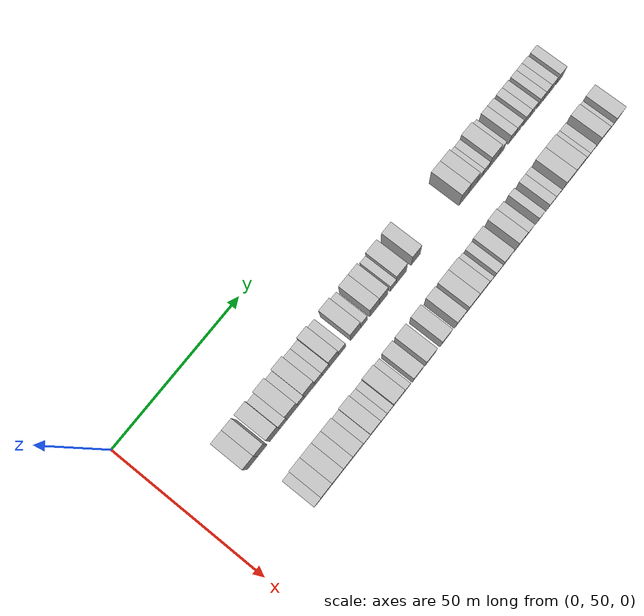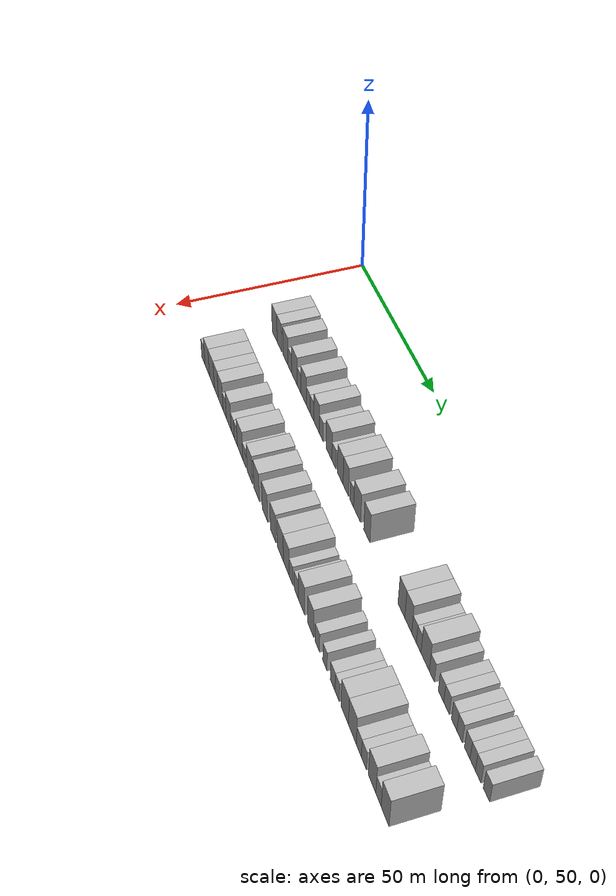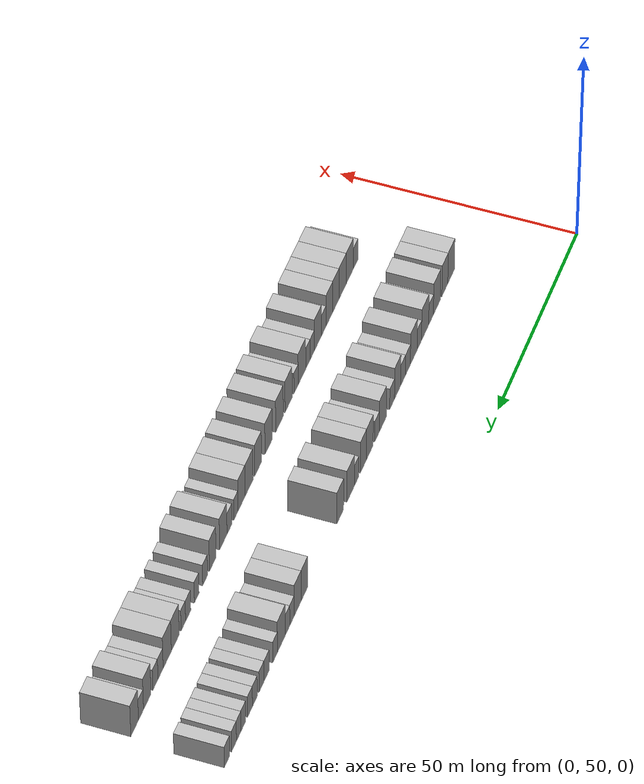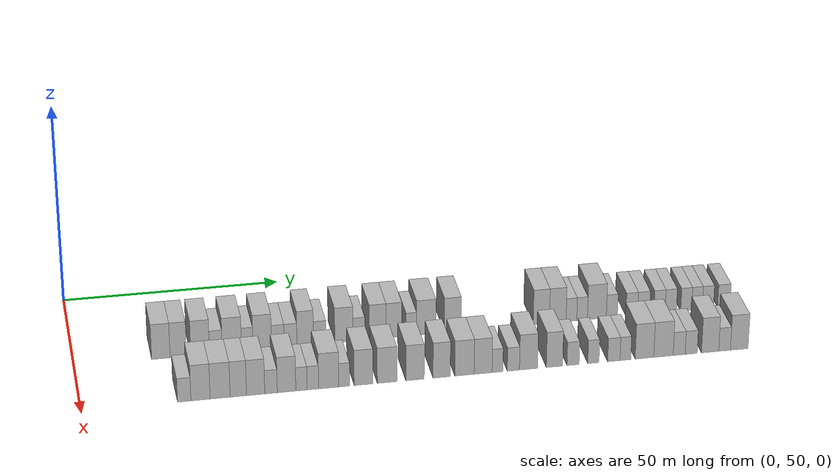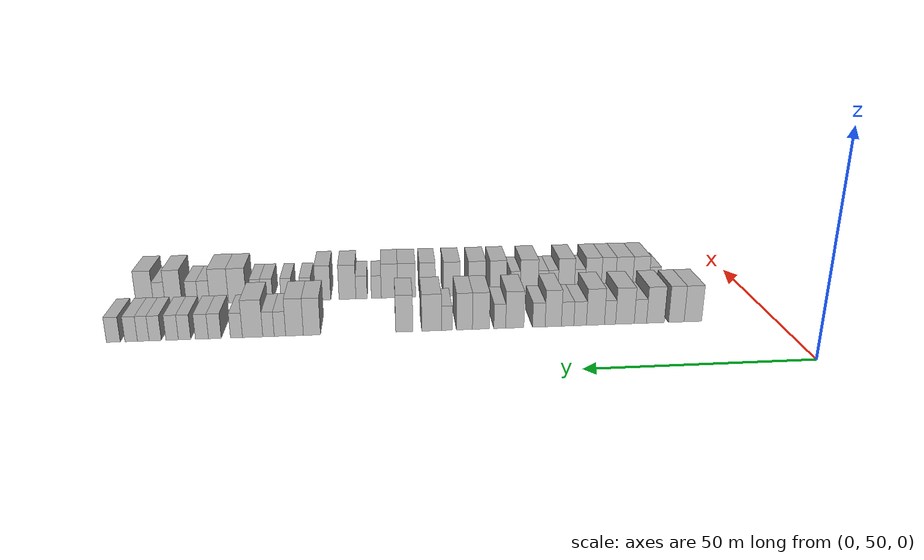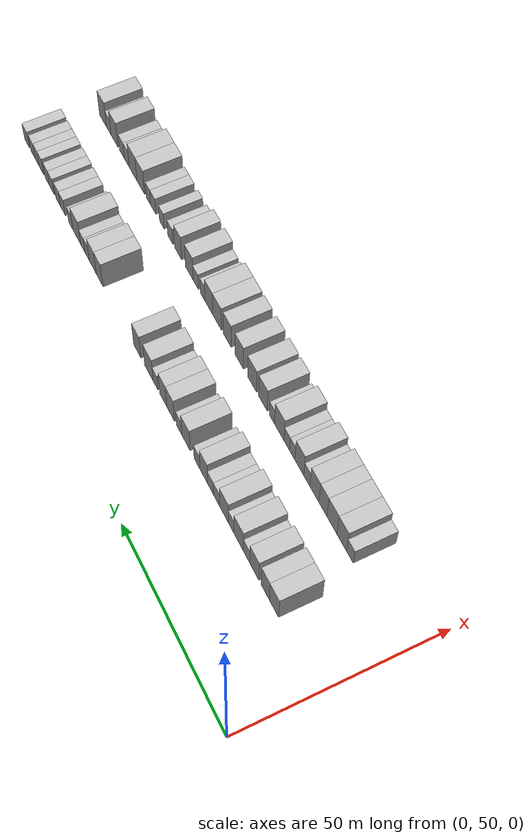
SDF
<sdf version="1.6">
 <world name="default">
  <model name="building_68">
   <static>1</static>
   <pose>25.0000 69.4503 0 0.000000 0.000000 0.000000</pose>
   <link name="link">
    <pose>0 0 4.50 0 0 0</pose>
    <collision name="collision"><geometry><box><size>10.0000 4.1691 9.0000</size></box></geometry></collision>
    <visual name="visual">
     <cast_shadows>0</cast_shadows>
     <geometry><box><size>10.0000 4.1691 9.0000</size></box></geometry>
     <material>
      <script>
       <uri>model://HANNAS_wall/materials/scripts</uri>
       <uri>model://HANNAS_wall/materials/textures</uri>
       <name>vrc/HANNAS_wall</name>
      </script>
     </material>
    </visual>
   </link>
  </model>
  <model name="building_69">
   <static>1</static>
   <pose>25.0000 73.3714 0 0.000000 0.000000 0.000000</pose>
   <link name="link">
    <pose>0 0 4.50 0 0 0</pose>
    <collision name="collision"><geometry><box><size>10.0000 3.6731 9.0000</size></box></geometry></collision>
    <visual name="visual">
     <cast_shadows>0</cast_shadows>
     <geometry><box><size>10.0000 3.6731 9.0000</size></box></geometry>
     <material>
      <script>
       <uri>model://HANNAS_wall/materials/scripts</uri>
       <uri>model://HANNAS_wall/materials/textures</uri>
       <name>vrc/HANNAS_wall</name>
      </script>
     </material>
    </visual>
   </link>
  </model>
  <model name="building_70">
   <static>1</static>
   <pose>25.0000 78.3073 0 0.000000 0.000000 0.000000</pose>
   <link name="link">
    <pose>0 0 4.50 0 0 0</pose>
    <collision name="collision"><geometry><box><size>10.0000 4.1988 9.0000</size></box></geometry></collision>
    <visual name="visual">
     <cast_shadows>0</cast_shadows>
     <geometry><box><size>10.0000 4.1988 9.0000</size></box></geometry>
     <material>
      <script>
       <uri>model://HANNAS_wall/materials/scripts</uri>
       <uri>model://HANNAS_wall/materials/textures</uri>
       <name>vrc/HANNAS_wall</name>
      </script>
     </material>
    </visual>
   </link>
  </model>
  <model name="building_71">
   <static>1</static>
   <pose>25.0000 81.8561 0 0.000000 0.000000 0.000000</pose>
   <link name="link">
    <pose>0 0 3.00 0 0 0</pose>
    <collision name="collision"><geometry><box><size>10.0000 2.8987 6.0000</size></box></geometry></collision>
    <visual name="visual">
     <cast_shadows>0</cast_shadows>
     <geometry><box><size>10.0000 2.8987 6.0000</size></box></geometry>
     <material>
      <script>
       <uri>model://HANNAS_wall/materials/scripts</uri>
       <uri>model://HANNAS_wall/materials/textures</uri>
       <name>vrc/HANNAS_wall</name>
      </script>
     </material>
    </visual>
   </link>
  </model>
  <model name="building_72">
   <static>1</static>
   <pose>25.0000 85.4938 0 0.000000 0.000000 0.000000</pose>
   <link name="link">
    <pose>0 0 4.50 0 0 0</pose>
    <collision name="collision"><geometry><box><size>10.0000 4.3767 9.0000</size></box></geometry></collision>
    <visual name="visual">
     <cast_shadows>0</cast_shadows>
     <geometry><box><size>10.0000 4.3767 9.0000</size></box></geometry>
     <material>
      <script>
       <uri>model://HANNAS_wall/materials/scripts</uri>
       <uri>model://HANNAS_wall/materials/textures</uri>
       <name>vrc/HANNAS_wall</name>
      </script>
     </material>
    </visual>
   </link>
  </model>
  <model name="building_73">
   <static>1</static>
   <pose>25.0000 88.9844 0 0.000000 0.000000 0.000000</pose>
   <link name="link">
    <pose>0 0 3.00 0 0 0</pose>
    <collision name="collision"><geometry><box><size>10.0000 2.6045 6.0000</size></box></geometry></collision>
    <visual name="visual">
     <cast_shadows>0</cast_shadows>
     <geometry><box><size>10.0000 2.6045 6.0000</size></box></geometry>
     <material>
      <script>
       <uri>model://HANNAS_wall/materials/scripts</uri>
       <uri>model://HANNAS_wall/materials/textures</uri>
       <name>vrc/HANNAS_wall</name>
      </script>
     </material>
    </visual>
   </link>
  </model>
  <model name="building_74">
   <static>1</static>
   <pose>25.0000 92.3918 0 0.000000 0.000000 0.000000</pose>
   <link name="link">
    <pose>0 0 4.50 0 0 0</pose>
    <collision name="collision"><geometry><box><size>10.0000 4.2104 9.0000</size></box></geometry></collision>
    <visual name="visual">
     <cast_shadows>0</cast_shadows>
     <geometry><box><size>10.0000 4.2104 9.0000</size></box></geometry>
     <material>
      <script>
       <uri>model://HANNAS_wall/materials/scripts</uri>
       <uri>model://HANNAS_wall/materials/textures</uri>
       <name>vrc/HANNAS_wall</name>
      </script>
     </material>
    </visual>
   </link>
  </model>
  <model name="building_75">
   <static>1</static>
   <pose>25.0000 95.9577 0 0.000000 0.000000 0.000000</pose>
   <link name="link">
    <pose>0 0 3.00 0 0 0</pose>
    <collision name="collision"><geometry><box><size>10.0000 2.9214 6.0000</size></box></geometry></collision>
    <visual name="visual">
     <cast_shadows>0</cast_shadows>
     <geometry><box><size>10.0000 2.9214 6.0000</size></box></geometry>
     <material>
      <script>
       <uri>model://HANNAS_wall/materials/scripts</uri>
       <uri>model://HANNAS_wall/materials/textures</uri>
       <name>vrc/HANNAS_wall</name>
      </script>
     </material>
    </visual>
   </link>
  </model>
  <model name="building_76">
   <static>1</static>
   <pose>25.0000 98.8591 0 0.000000 0.000000 0.000000</pose>
   <link name="link">
    <pose>0 0 3.00 0 0 0</pose>
    <collision name="collision"><geometry><box><size>10.0000 2.8815 6.0000</size></box></geometry></collision>
    <visual name="visual">
     <cast_shadows>0</cast_shadows>
     <geometry><box><size>10.0000 2.8815 6.0000</size></box></geometry>
     <material>
      <script>
       <uri>model://HANNAS_wall/materials/scripts</uri>
       <uri>model://HANNAS_wall/materials/textures</uri>
       <name>vrc/HANNAS_wall</name>
      </script>
     </material>
    </visual>
   </link>
  </model>
  <model name="building_77">
   <static>1</static>
   <pose>25.0000 102.1844 0 0.000000 0.000000 0.000000</pose>
   <link name="link">
    <pose>0 0 4.50 0 0 0</pose>
    <collision name="collision"><geometry><box><size>10.0000 3.7690 9.0000</size></box></geometry></collision>
    <visual name="visual">
     <cast_shadows>0</cast_shadows>
     <geometry><box><size>10.0000 3.7690 9.0000</size></box></geometry>
     <material>
      <script>
       <uri>model://HANNAS_wall/materials/scripts</uri>
       <uri>model://HANNAS_wall/materials/textures</uri>
       <name>vrc/HANNAS_wall</name>
      </script>
     </material>
    </visual>
   </link>
  </model>
  <model name="building_78">
   <static>1</static>
   <pose>25.0000 105.5099 0 0.000000 0.000000 0.000000</pose>
   <link name="link">
    <pose>0 0 3.00 0 0 0</pose>
    <collision name="collision"><geometry><box><size>10.0000 2.8819 6.0000</size></box></geometry></collision>
    <visual name="visual">
     <cast_shadows>0</cast_shadows>
     <geometry><box><size>10.0000 2.8819 6.0000</size></box></geometry>
     <material>
      <script>
       <uri>model://HANNAS_wall/materials/scripts</uri>
       <uri>model://HANNAS_wall/materials/textures</uri>
       <name>vrc/HANNAS_wall</name>
      </script>
     </material>
    </visual>
   </link>
  </model>
  <model name="building_79">
   <static>1</static>
   <pose>25.0000 111.0395 0 0.000000 0.000000 0.000000</pose>
   <link name="link">
    <pose>0 0 4.50 0 0 0</pose>
    <collision name="collision"><geometry><box><size>10.0000 4.1774 9.0000</size></box></geometry></collision>
    <visual name="visual">
     <cast_shadows>0</cast_shadows>
     <geometry><box><size>10.0000 4.1774 9.0000</size></box></geometry>
     <material>
      <script>
       <uri>model://HANNAS_wall/materials/scripts</uri>
       <uri>model://HANNAS_wall/materials/textures</uri>
       <name>vrc/HANNAS_wall</name>
      </script>
     </material>
    </visual>
   </link>
  </model>
  <model name="building_80">
   <static>1</static>
   <pose>25.0000 114.4800 0 0.000000 0.000000 0.000000</pose>
   <link name="link">
    <pose>0 0 3.00 0 0 0</pose>
    <collision name="collision"><geometry><box><size>10.0000 2.7036 6.0000</size></box></geometry></collision>
    <visual name="visual">
     <cast_shadows>0</cast_shadows>
     <geometry><box><size>10.0000 2.7036 6.0000</size></box></geometry>
     <material>
      <script>
       <uri>model://HANNAS_wall/materials/scripts</uri>
       <uri>model://HANNAS_wall/materials/textures</uri>
       <name>vrc/HANNAS_wall</name>
      </script>
     </material>
    </visual>
   </link>
  </model>
  <model name="building_81">
   <static>1</static>
   <pose>25.0000 118.7855 0 0.000000 0.000000 0.000000</pose>
   <link name="link">
    <pose>0 0 4.50 0 0 0</pose>
    <collision name="collision"><geometry><box><size>10.0000 3.9073 9.0000</size></box></geometry></collision>
    <visual name="visual">
     <cast_shadows>0</cast_shadows>
     <geometry><box><size>10.0000 3.9073 9.0000</size></box></geometry>
     <material>
      <script>
       <uri>model://HANNAS_wall/materials/scripts</uri>
       <uri>model://HANNAS_wall/materials/textures</uri>
       <name>vrc/HANNAS_wall</name>
      </script>
     </material>
    </visual>
   </link>
  </model>
  <model name="building_82">
   <static>1</static>
   <pose>25.0000 122.5504 0 0.000000 0.000000 0.000000</pose>
   <link name="link">
    <pose>0 0 4.50 0 0 0</pose>
    <collision name="collision"><geometry><box><size>10.0000 3.6225 9.0000</size></box></geometry></collision>
    <visual name="visual">
     <cast_shadows>0</cast_shadows>
     <geometry><box><size>10.0000 3.6225 9.0000</size></box></geometry>
     <material>
      <script>
       <uri>model://HANNAS_wall/materials/scripts</uri>
       <uri>model://HANNAS_wall/materials/textures</uri>
       <name>vrc/HANNAS_wall</name>
      </script>
     </material>
    </visual>
   </link>
  </model>
  <model name="building_83">
   <static>1</static>
   <pose>25.0000 126.5689 0 0.000000 0.000000 0.000000</pose>
   <link name="link">
    <pose>0 0 3.00 0 0 0</pose>
    <collision name="collision"><geometry><box><size>10.0000 2.4144 6.0000</size></box></geometry></collision>
    <visual name="visual">
     <cast_shadows>0</cast_shadows>
     <geometry><box><size>10.0000 2.4144 6.0000</size></box></geometry>
     <material>
      <script>
       <uri>model://HANNAS_wall/materials/scripts</uri>
       <uri>model://HANNAS_wall/materials/textures</uri>
       <name>vrc/HANNAS_wall</name>
      </script>
     </material>
    </visual>
   </link>
  </model>
  <model name="building_84">
   <static>1</static>
   <pose>25.0000 130.0015 0 0.000000 0.000000 0.000000</pose>
   <link name="link">
    <pose>0 0 4.50 0 0 0</pose>
    <collision name="collision"><geometry><box><size>10.0000 4.4509 9.0000</size></box></geometry></collision>
    <visual name="visual">
     <cast_shadows>0</cast_shadows>
     <geometry><box><size>10.0000 4.4509 9.0000</size></box></geometry>
     <material>
      <script>
       <uri>model://HANNAS_wall/materials/scripts</uri>
       <uri>model://HANNAS_wall/materials/textures</uri>
       <name>vrc/HANNAS_wall</name>
      </script>
     </material>
    </visual>
   </link>
  </model>
  <model name="building_85">
   <static>1</static>
   <pose>25.0000 136.1635 0 0.000000 0.000000 0.000000</pose>
   <link name="link">
    <pose>0 0 4.50 0 0 0</pose>
    <collision name="collision"><geometry><box><size>10.0000 3.8731 9.0000</size></box></geometry></collision>
    <visual name="visual">
     <cast_shadows>0</cast_shadows>
     <geometry><box><size>10.0000 3.8731 9.0000</size></box></geometry>
     <material>
      <script>
       <uri>model://HANNAS_wall/materials/scripts</uri>
       <uri>model://HANNAS_wall/materials/textures</uri>
       <name>vrc/HANNAS_wall</name>
      </script>
     </material>
    </visual>
   </link>
  </model>
  <model name="building_86">
   <static>1</static>
   <pose>25.0000 156.7935 0 0.000000 0.000000 0.000000</pose>
   <link name="link">
    <pose>0 0 4.50 0 0 0</pose>
    <collision name="collision"><geometry><box><size>10.0000 3.7956 9.0000</size></box></geometry></collision>
    <visual name="visual">
     <cast_shadows>0</cast_shadows>
     <geometry><box><size>10.0000 3.7956 9.0000</size></box></geometry>
     <material>
      <script>
       <uri>model://HANNAS_wall/materials/scripts</uri>
       <uri>model://HANNAS_wall/materials/textures</uri>
       <name>vrc/HANNAS_wall</name>
      </script>
     </material>
    </visual>
   </link>
  </model>
  <model name="building_87">
   <static>1</static>
   <pose>25.0000 160.6420 0 0.000000 0.000000 0.000000</pose>
   <link name="link">
    <pose>0 0 4.50 0 0 0</pose>
    <collision name="collision"><geometry><box><size>10.0000 3.9015 9.0000</size></box></geometry></collision>
    <visual name="visual">
     <cast_shadows>0</cast_shadows>
     <geometry><box><size>10.0000 3.9015 9.0000</size></box></geometry>
     <material>
      <script>
       <uri>model://HANNAS_wall/materials/scripts</uri>
       <uri>model://HANNAS_wall/materials/textures</uri>
       <name>vrc/HANNAS_wall</name>
      </script>
     </material>
    </visual>
   </link>
  </model>
  <model name="building_88">
   <static>1</static>
   <pose>25.0000 163.8565 0 0.000000 0.000000 0.000000</pose>
   <link name="link">
    <pose>0 0 3.00 0 0 0</pose>
    <collision name="collision"><geometry><box><size>10.0000 2.5274 6.0000</size></box></geometry></collision>
    <visual name="visual">
     <cast_shadows>0</cast_shadows>
     <geometry><box><size>10.0000 2.5274 6.0000</size></box></geometry>
     <material>
      <script>
       <uri>model://HANNAS_wall/materials/scripts</uri>
       <uri>model://HANNAS_wall/materials/textures</uri>
       <name>vrc/HANNAS_wall</name>
      </script>
     </material>
    </visual>
   </link>
  </model>
  <model name="building_89">
   <static>1</static>
   <pose>25.0000 166.3683 0 0.000000 0.000000 0.000000</pose>
   <link name="link">
    <pose>0 0 3.00 0 0 0</pose>
    <collision name="collision"><geometry><box><size>10.0000 2.4962 6.0000</size></box></geometry></collision>
    <visual name="visual">
     <cast_shadows>0</cast_shadows>
     <geometry><box><size>10.0000 2.4962 6.0000</size></box></geometry>
     <material>
      <script>
       <uri>model://HANNAS_wall/materials/scripts</uri>
       <uri>model://HANNAS_wall/materials/textures</uri>
       <name>vrc/HANNAS_wall</name>
      </script>
     </material>
    </visual>
   </link>
  </model>
  <model name="building_90">
   <static>1</static>
   <pose>25.0000 169.8488 0 0.000000 0.000000 0.000000</pose>
   <link name="link">
    <pose>0 0 4.50 0 0 0</pose>
    <collision name="collision"><geometry><box><size>10.0000 4.4647 9.0000</size></box></geometry></collision>
    <visual name="visual">
     <cast_shadows>0</cast_shadows>
     <geometry><box><size>10.0000 4.4647 9.0000</size></box></geometry>
     <material>
      <script>
       <uri>model://HANNAS_wall/materials/scripts</uri>
       <uri>model://HANNAS_wall/materials/textures</uri>
       <name>vrc/HANNAS_wall</name>
      </script>
     </material>
    </visual>
   </link>
  </model>
  <model name="building_91">
   <static>1</static>
   <pose>25.0000 173.3883 0 0.000000 0.000000 0.000000</pose>
   <link name="link">
    <pose>0 0 3.00 0 0 0</pose>
    <collision name="collision"><geometry><box><size>10.0000 2.6144 6.0000</size></box></geometry></collision>
    <visual name="visual">
     <cast_shadows>0</cast_shadows>
     <geometry><box><size>10.0000 2.6144 6.0000</size></box></geometry>
     <material>
      <script>
       <uri>model://HANNAS_wall/materials/scripts</uri>
       <uri>model://HANNAS_wall/materials/textures</uri>
       <name>vrc/HANNAS_wall</name>
      </script>
     </material>
    </visual>
   </link>
  </model>
  <model name="building_92">
   <static>1</static>
   <pose>25.0000 178.0933 0 0.000000 0.000000 0.000000</pose>
   <link name="link">
    <pose>0 0 3.00 0 0 0</pose>
    <collision name="collision"><geometry><box><size>10.0000 2.7958 6.0000</size></box></geometry></collision>
    <visual name="visual">
     <cast_shadows>0</cast_shadows>
     <geometry><box><size>10.0000 2.7958 6.0000</size></box></geometry>
     <material>
      <script>
       <uri>model://HANNAS_wall/materials/scripts</uri>
       <uri>model://HANNAS_wall/materials/textures</uri>
       <name>vrc/HANNAS_wall</name>
      </script>
     </material>
    </visual>
   </link>
  </model>
  <model name="building_93">
   <static>1</static>
   <pose>25.0000 180.9067 0 0.000000 0.000000 0.000000</pose>
   <link name="link">
    <pose>0 0 3.00 0 0 0</pose>
    <collision name="collision"><geometry><box><size>10.0000 2.8310 6.0000</size></box></geometry></collision>
    <visual name="visual">
     <cast_shadows>0</cast_shadows>
     <geometry><box><size>10.0000 2.8310 6.0000</size></box></geometry>
     <material>
      <script>
       <uri>model://HANNAS_wall/materials/scripts</uri>
       <uri>model://HANNAS_wall/materials/textures</uri>
       <name>vrc/HANNAS_wall</name>
      </script>
     </material>
    </visual>
   </link>
  </model>
  <model name="building_94">
   <static>1</static>
   <pose>25.0000 184.6644 0 0.000000 0.000000 0.000000</pose>
   <link name="link">
    <pose>0 0 3.00 0 0 0</pose>
    <collision name="collision"><geometry><box><size>10.0000 2.6842 6.0000</size></box></geometry></collision>
    <visual name="visual">
     <cast_shadows>0</cast_shadows>
     <geometry><box><size>10.0000 2.6842 6.0000</size></box></geometry>
     <material>
      <script>
       <uri>model://HANNAS_wall/materials/scripts</uri>
       <uri>model://HANNAS_wall/materials/textures</uri>
       <name>vrc/HANNAS_wall</name>
      </script>
     </material>
    </visual>
   </link>
  </model>
  <model name="building_95">
   <static>1</static>
   <pose>25.0000 187.3493 0 0.000000 0.000000 0.000000</pose>
   <link name="link">
    <pose>0 0 3.00 0 0 0</pose>
    <collision name="collision"><geometry><box><size>10.0000 2.6855 6.0000</size></box></geometry></collision>
    <visual name="visual">
     <cast_shadows>0</cast_shadows>
     <geometry><box><size>10.0000 2.6855 6.0000</size></box></geometry>
     <material>
      <script>
       <uri>model://HANNAS_wall/materials/scripts</uri>
       <uri>model://HANNAS_wall/materials/textures</uri>
       <name>vrc/HANNAS_wall</name>
      </script>
     </material>
    </visual>
   </link>
  </model>
  <model name="building_96">
   <static>1</static>
   <pose>25.0000 191.0009 0 0.000000 0.000000 0.000000</pose>
   <link name="link">
    <pose>0 0 3.00 0 0 0</pose>
    <collision name="collision"><geometry><box><size>10.0000 2.6177 6.0000</size></box></geometry></collision>
    <visual name="visual">
     <cast_shadows>0</cast_shadows>
     <geometry><box><size>10.0000 2.6177 6.0000</size></box></geometry>
     <material>
      <script>
       <uri>model://HANNAS_wall/materials/scripts</uri>
       <uri>model://HANNAS_wall/materials/textures</uri>
       <name>vrc/HANNAS_wall</name>
      </script>
     </material>
    </visual>
   </link>
  </model>
  <model name="building_97">
   <static>1</static>
   <pose>25.0000 193.5655 0 0.000000 0.000000 0.000000</pose>
   <link name="link">
    <pose>0 0 3.00 0 0 0</pose>
    <collision name="collision"><geometry><box><size>10.0000 2.5115 6.0000</size></box></geometry></collision>
    <visual name="visual">
     <cast_shadows>0</cast_shadows>
     <geometry><box><size>10.0000 2.5115 6.0000</size></box></geometry>
     <material>
      <script>
       <uri>model://HANNAS_wall/materials/scripts</uri>
       <uri>model://HANNAS_wall/materials/textures</uri>
       <name>vrc/HANNAS_wall</name>
      </script>
     </material>
    </visual>
   </link>
  </model>
  <model name="building_98">
   <static>1</static>
   <pose>25.0000 196.1638 0 0.000000 0.000000 0.000000</pose>
   <link name="link">
    <pose>0 0 3.00 0 0 0</pose>
    <collision name="collision"><geometry><box><size>10.0000 2.6851 6.0000</size></box></geometry></collision>
    <visual name="visual">
     <cast_shadows>0</cast_shadows>
     <geometry><box><size>10.0000 2.6851 6.0000</size></box></geometry>
     <material>
      <script>
       <uri>model://HANNAS_wall/materials/scripts</uri>
       <uri>model://HANNAS_wall/materials/textures</uri>
       <name>vrc/HANNAS_wall</name>
      </script>
     </material>
    </visual>
   </link>
  </model>
  <model name="building_99">
   <static>1</static>
   <pose>25.0000 199.9843 0 0.000000 0.000000 0.000000</pose>
   <link name="link">
    <pose>0 0 3.00 0 0 0</pose>
    <collision name="collision"><geometry><box><size>10.0000 2.9560 6.0000</size></box></geometry></collision>
    <visual name="visual">
     <cast_shadows>0</cast_shadows>
     <geometry><box><size>10.0000 2.9560 6.0000</size></box></geometry>
     <material>
      <script>
       <uri>model://HANNAS_wall/materials/scripts</uri>
       <uri>model://HANNAS_wall/materials/textures</uri>
       <name>vrc/HANNAS_wall</name>
      </script>
     </material>
    </visual>
   </link>
  </model>
  <model name="building_159">
   <static>1</static>
   <pose>44.0000 72.5398 0 0.000000 0.000000 0.000000</pose>
   <link name="link">
    <pose>0 0 3.00 0 0 0</pose>
    <collision name="collision"><geometry><box><size>10.0000 2.9612 6.0000</size></box></geometry></collision>
    <visual name="visual">
     <cast_shadows>0</cast_shadows>
     <geometry><box><size>10.0000 2.9612 6.0000</size></box></geometry>
     <material>
      <script>
       <uri>model://HANNAS_wall/materials/scripts</uri>
       <uri>model://HANNAS_wall/materials/textures</uri>
       <name>vrc/HANNAS_wall</name>
      </script>
     </material>
    </visual>
   </link>
  </model>
  <model name="building_160">
   <static>1</static>
   <pose>44.0000 76.1293 0 0.000000 0.000000 0.000000</pose>
   <link name="link">
    <pose>0 0 4.50 0 0 0</pose>
    <collision name="collision"><geometry><box><size>10.0000 4.2179 9.0000</size></box></geometry></collision>
    <visual name="visual">
     <cast_shadows>0</cast_shadows>
     <geometry><box><size>10.0000 4.2179 9.0000</size></box></geometry>
     <material>
      <script>
       <uri>model://HANNAS_wall/materials/scripts</uri>
       <uri>model://HANNAS_wall/materials/textures</uri>
       <name>vrc/HANNAS_wall</name>
      </script>
     </material>
    </visual>
   </link>
  </model>
  <model name="building_161">
   <static>1</static>
   <pose>44.0000 80.4388 0 0.000000 0.000000 0.000000</pose>
   <link name="link">
    <pose>0 0 4.50 0 0 0</pose>
    <collision name="collision"><geometry><box><size>10.0000 4.4010 9.0000</size></box></geometry></collision>
    <visual name="visual">
     <cast_shadows>0</cast_shadows>
     <geometry><box><size>10.0000 4.4010 9.0000</size></box></geometry>
     <material>
      <script>
       <uri>model://HANNAS_wall/materials/scripts</uri>
       <uri>model://HANNAS_wall/materials/textures</uri>
       <name>vrc/HANNAS_wall</name>
      </script>
     </material>
    </visual>
   </link>
  </model>
  <model name="building_162">
   <static>1</static>
   <pose>44.0000 84.4505 0 0.000000 0.000000 0.000000</pose>
   <link name="link">
    <pose>0 0 4.50 0 0 0</pose>
    <collision name="collision"><geometry><box><size>10.0000 3.6226 9.0000</size></box></geometry></collision>
    <visual name="visual">
     <cast_shadows>0</cast_shadows>
     <geometry><box><size>10.0000 3.6226 9.0000</size></box></geometry>
     <material>
      <script>
       <uri>model://HANNAS_wall/materials/scripts</uri>
       <uri>model://HANNAS_wall/materials/textures</uri>
       <name>vrc/HANNAS_wall</name>
      </script>
     </material>
    </visual>
   </link>
  </model>
  <model name="building_163">
   <static>1</static>
   <pose>44.0000 88.2888 0 0.000000 0.000000 0.000000</pose>
   <link name="link">
    <pose>0 0 4.50 0 0 0</pose>
    <collision name="collision"><geometry><box><size>10.0000 4.0539 9.0000</size></box></geometry></collision>
    <visual name="visual">
     <cast_shadows>0</cast_shadows>
     <geometry><box><size>10.0000 4.0539 9.0000</size></box></geometry>
     <material>
      <script>
       <uri>model://HANNAS_wall/materials/scripts</uri>
       <uri>model://HANNAS_wall/materials/textures</uri>
       <name>vrc/HANNAS_wall</name>
      </script>
     </material>
    </visual>
   </link>
  </model>
  <model name="building_164">
   <static>1</static>
   <pose>44.0000 91.7066 0 0.000000 0.000000 0.000000</pose>
   <link name="link">
    <pose>0 0 3.00 0 0 0</pose>
    <collision name="collision"><geometry><box><size>10.0000 2.7818 6.0000</size></box></geometry></collision>
    <visual name="visual">
     <cast_shadows>0</cast_shadows>
     <geometry><box><size>10.0000 2.7818 6.0000</size></box></geometry>
     <material>
      <script>
       <uri>model://HANNAS_wall/materials/scripts</uri>
       <uri>model://HANNAS_wall/materials/textures</uri>
       <name>vrc/HANNAS_wall</name>
      </script>
     </material>
    </visual>
   </link>
  </model>
  <model name="building_165">
   <static>1</static>
   <pose>44.0000 95.1552 0 0.000000 0.000000 0.000000</pose>
   <link name="link">
    <pose>0 0 4.50 0 0 0</pose>
    <collision name="collision"><geometry><box><size>10.0000 4.1153 9.0000</size></box></geometry></collision>
    <visual name="visual">
     <cast_shadows>0</cast_shadows>
     <geometry><box><size>10.0000 4.1153 9.0000</size></box></geometry>
     <material>
      <script>
       <uri>model://HANNAS_wall/materials/scripts</uri>
       <uri>model://HANNAS_wall/materials/textures</uri>
       <name>vrc/HANNAS_wall</name>
      </script>
     </material>
    </visual>
   </link>
  </model>
  <model name="building_166">
   <static>1</static>
   <pose>44.0000 98.4694 0 0.000000 0.000000 0.000000</pose>
   <link name="link">
    <pose>0 0 3.00 0 0 0</pose>
    <collision name="collision"><geometry><box><size>10.0000 2.5132 6.0000</size></box></geometry></collision>
    <visual name="visual">
     <cast_shadows>0</cast_shadows>
     <geometry><box><size>10.0000 2.5132 6.0000</size></box></geometry>
     <material>
      <script>
       <uri>model://HANNAS_wall/materials/scripts</uri>
       <uri>model://HANNAS_wall/materials/textures</uri>
       <name>vrc/HANNAS_wall</name>
      </script>
     </material>
    </visual>
   </link>
  </model>
  <model name="building_167">
   <static>1</static>
   <pose>44.0000 101.0112 0 0.000000 0.000000 0.000000</pose>
   <link name="link">
    <pose>0 0 3.00 0 0 0</pose>
    <collision name="collision"><geometry><box><size>10.0000 2.5705 6.0000</size></box></geometry></collision>
    <visual name="visual">
     <cast_shadows>0</cast_shadows>
     <geometry><box><size>10.0000 2.5705 6.0000</size></box></geometry>
     <material>
      <script>
       <uri>model://HANNAS_wall/materials/scripts</uri>
       <uri>model://HANNAS_wall/materials/textures</uri>
       <name>vrc/HANNAS_wall</name>
      </script>
     </material>
    </visual>
   </link>
  </model>
  <model name="building_168">
   <static>1</static>
   <pose>44.0000 104.5457 0 0.000000 0.000000 0.000000</pose>
   <link name="link">
    <pose>0 0 4.50 0 0 0</pose>
    <collision name="collision"><geometry><box><size>10.0000 4.4985 9.0000</size></box></geometry></collision>
    <visual name="visual">
     <cast_shadows>0</cast_shadows>
     <geometry><box><size>10.0000 4.4985 9.0000</size></box></geometry>
     <material>
      <script>
       <uri>model://HANNAS_wall/materials/scripts</uri>
       <uri>model://HANNAS_wall/materials/textures</uri>
       <name>vrc/HANNAS_wall</name>
      </script>
     </material>
    </visual>
   </link>
  </model>
  <model name="building_169">
   <static>1</static>
   <pose>44.0000 108.0178 0 0.000000 0.000000 0.000000</pose>
   <link name="link">
    <pose>0 0 3.00 0 0 0</pose>
    <collision name="collision"><geometry><box><size>10.0000 2.4456 6.0000</size></box></geometry></collision>
    <visual name="visual">
     <cast_shadows>0</cast_shadows>
     <geometry><box><size>10.0000 2.4456 6.0000</size></box></geometry>
     <material>
      <script>
       <uri>model://HANNAS_wall/materials/scripts</uri>
       <uri>model://HANNAS_wall/materials/textures</uri>
       <name>vrc/HANNAS_wall</name>
      </script>
     </material>
    </visual>
   </link>
  </model>
  <model name="building_170">
   <static>1</static>
   <pose>44.0000 112.3366 0 0.000000 0.000000 0.000000</pose>
   <link name="link">
    <pose>0 0 4.50 0 0 0</pose>
    <collision name="collision"><geometry><box><size>10.0000 4.1920 9.0000</size></box></geometry></collision>
    <visual name="visual">
     <cast_shadows>0</cast_shadows>
     <geometry><box><size>10.0000 4.1920 9.0000</size></box></geometry>
     <material>
      <script>
       <uri>model://HANNAS_wall/materials/scripts</uri>
       <uri>model://HANNAS_wall/materials/textures</uri>
       <name>vrc/HANNAS_wall</name>
      </script>
     </material>
    </visual>
   </link>
  </model>
  <model name="building_171">
   <static>1</static>
   <pose>44.0000 117.6333 0 0.000000 0.000000 0.000000</pose>
   <link name="link">
    <pose>0 0 4.50 0 0 0</pose>
    <collision name="collision"><geometry><box><size>10.0000 4.4015 9.0000</size></box></geometry></collision>
    <visual name="visual">
     <cast_shadows>0</cast_shadows>
     <geometry><box><size>10.0000 4.4015 9.0000</size></box></geometry>
     <material>
      <script>
       <uri>model://HANNAS_wall/materials/scripts</uri>
       <uri>model://HANNAS_wall/materials/textures</uri>
       <name>vrc/HANNAS_wall</name>
      </script>
     </material>
    </visual>
   </link>
  </model>
  <model name="building_172">
   <static>1</static>
   <pose>44.0000 123.9047 0 0.000000 0.000000 0.000000</pose>
   <link name="link">
    <pose>0 0 4.50 0 0 0</pose>
    <collision name="collision"><geometry><box><size>10.0000 4.1411 9.0000</size></box></geometry></collision>
    <visual name="visual">
     <cast_shadows>0</cast_shadows>
     <geometry><box><size>10.0000 4.1411 9.0000</size></box></geometry>
     <material>
      <script>
       <uri>model://HANNAS_wall/materials/scripts</uri>
       <uri>model://HANNAS_wall/materials/textures</uri>
       <name>vrc/HANNAS_wall</name>
      </script>
     </material>
    </visual>
   </link>
  </model>
  <model name="building_173">
   <static>1</static>
   <pose>44.0000 129.9320 0 0.000000 0.000000 0.000000</pose>
   <link name="link">
    <pose>0 0 4.50 0 0 0</pose>
    <collision name="collision"><geometry><box><size>10.0000 3.9136 9.0000</size></box></geometry></collision>
    <visual name="visual">
     <cast_shadows>0</cast_shadows>
     <geometry><box><size>10.0000 3.9136 9.0000</size></box></geometry>
     <material>
      <script>
       <uri>model://HANNAS_wall/materials/scripts</uri>
       <uri>model://HANNAS_wall/materials/textures</uri>
       <name>vrc/HANNAS_wall</name>
      </script>
     </material>
    </visual>
   </link>
  </model>
  <model name="building_174">
   <static>1</static>
   <pose>44.0000 135.0901 0 0.000000 0.000000 0.000000</pose>
   <link name="link">
    <pose>0 0 4.50 0 0 0</pose>
    <collision name="collision"><geometry><box><size>10.0000 4.4026 9.0000</size></box></geometry></collision>
    <visual name="visual">
     <cast_shadows>0</cast_shadows>
     <geometry><box><size>10.0000 4.4026 9.0000</size></box></geometry>
     <material>
      <script>
       <uri>model://HANNAS_wall/materials/scripts</uri>
       <uri>model://HANNAS_wall/materials/textures</uri>
       <name>vrc/HANNAS_wall</name>
      </script>
     </material>
    </visual>
   </link>
  </model>
  <model name="building_175">
   <static>1</static>
   <pose>44.0000 139.3220 0 0.000000 0.000000 0.000000</pose>
   <link name="link">
    <pose>0 0 4.50 0 0 0</pose>
    <collision name="collision"><geometry><box><size>10.0000 4.0610 9.0000</size></box></geometry></collision>
    <visual name="visual">
     <cast_shadows>0</cast_shadows>
     <geometry><box><size>10.0000 4.0610 9.0000</size></box></geometry>
     <material>
      <script>
       <uri>model://HANNAS_wall/materials/scripts</uri>
       <uri>model://HANNAS_wall/materials/textures</uri>
       <name>vrc/HANNAS_wall</name>
      </script>
     </material>
    </visual>
   </link>
  </model>
  <model name="building_176">
   <static>1</static>
   <pose>44.0000 142.5770 0 0.000000 0.000000 0.000000</pose>
   <link name="link">
    <pose>0 0 3.00 0 0 0</pose>
    <collision name="collision"><geometry><box><size>10.0000 2.4490 6.0000</size></box></geometry></collision>
    <visual name="visual">
     <cast_shadows>0</cast_shadows>
     <geometry><box><size>10.0000 2.4490 6.0000</size></box></geometry>
     <material>
      <script>
       <uri>model://HANNAS_wall/materials/scripts</uri>
       <uri>model://HANNAS_wall/materials/textures</uri>
       <name>vrc/HANNAS_wall</name>
      </script>
     </material>
    </visual>
   </link>
  </model>
  <model name="building_177">
   <static>1</static>
   <pose>44.0000 146.1902 0 0.000000 0.000000 0.000000</pose>
   <link name="link">
    <pose>0 0 3.00 0 0 0</pose>
    <collision name="collision"><geometry><box><size>10.0000 2.7776 6.0000</size></box></geometry></collision>
    <visual name="visual">
     <cast_shadows>0</cast_shadows>
     <geometry><box><size>10.0000 2.7776 6.0000</size></box></geometry>
     <material>
      <script>
       <uri>model://HANNAS_wall/materials/scripts</uri>
       <uri>model://HANNAS_wall/materials/textures</uri>
       <name>vrc/HANNAS_wall</name>
      </script>
     </material>
    </visual>
   </link>
  </model>
  <model name="building_178">
   <static>1</static>
   <pose>44.0000 149.6472 0 0.000000 0.000000 0.000000</pose>
   <link name="link">
    <pose>0 0 4.50 0 0 0</pose>
    <collision name="collision"><geometry><box><size>10.0000 4.1362 9.0000</size></box></geometry></collision>
    <visual name="visual">
     <cast_shadows>0</cast_shadows>
     <geometry><box><size>10.0000 4.1362 9.0000</size></box></geometry>
     <material>
      <script>
       <uri>model://HANNAS_wall/materials/scripts</uri>
       <uri>model://HANNAS_wall/materials/textures</uri>
       <name>vrc/HANNAS_wall</name>
      </script>
     </material>
    </visual>
   </link>
  </model>
  <model name="building_179">
   <static>1</static>
   <pose>44.0000 155.5721 0 0.000000 0.000000 0.000000</pose>
   <link name="link">
    <pose>0 0 4.50 0 0 0</pose>
    <collision name="collision"><geometry><box><size>10.0000 3.7136 9.0000</size></box></geometry></collision>
    <visual name="visual">
     <cast_shadows>0</cast_shadows>
     <geometry><box><size>10.0000 3.7136 9.0000</size></box></geometry>
     <material>
      <script>
       <uri>model://HANNAS_wall/materials/scripts</uri>
       <uri>model://HANNAS_wall/materials/textures</uri>
       <name>vrc/HANNAS_wall</name>
      </script>
     </material>
    </visual>
   </link>
  </model>
  <model name="building_180">
   <static>1</static>
   <pose>44.0000 159.8139 0 0.000000 0.000000 0.000000</pose>
   <link name="link">
    <pose>0 0 3.00 0 0 0</pose>
    <collision name="collision"><geometry><box><size>10.0000 2.7700 6.0000</size></box></geometry></collision>
    <visual name="visual">
     <cast_shadows>0</cast_shadows>
     <geometry><box><size>10.0000 2.7700 6.0000</size></box></geometry>
     <material>
      <script>
       <uri>model://HANNAS_wall/materials/scripts</uri>
       <uri>model://HANNAS_wall/materials/textures</uri>
       <name>vrc/HANNAS_wall</name>
      </script>
     </material>
    </visual>
   </link>
  </model>
  <model name="building_181">
   <static>1</static>
   <pose>44.0000 164.4835 0 0.000000 0.000000 0.000000</pose>
   <link name="link">
    <pose>0 0 3.00 0 0 0</pose>
    <collision name="collision"><geometry><box><size>10.0000 2.5692 6.0000</size></box></geometry></collision>
    <visual name="visual">
     <cast_shadows>0</cast_shadows>
     <geometry><box><size>10.0000 2.5692 6.0000</size></box></geometry>
     <material>
      <script>
       <uri>model://HANNAS_wall/materials/scripts</uri>
       <uri>model://HANNAS_wall/materials/textures</uri>
       <name>vrc/HANNAS_wall</name>
      </script>
     </material>
    </visual>
   </link>
  </model>
  <model name="building_182">
   <static>1</static>
   <pose>44.0000 169.1935 0 0.000000 0.000000 0.000000</pose>
   <link name="link">
    <pose>0 0 3.00 0 0 0</pose>
    <collision name="collision"><geometry><box><size>10.0000 2.8508 6.0000</size></box></geometry></collision>
    <visual name="visual">
     <cast_shadows>0</cast_shadows>
     <geometry><box><size>10.0000 2.8508 6.0000</size></box></geometry>
     <material>
      <script>
       <uri>model://HANNAS_wall/materials/scripts</uri>
       <uri>model://HANNAS_wall/materials/textures</uri>
       <name>vrc/HANNAS_wall</name>
      </script>
     </material>
    </visual>
   </link>
  </model>
  <model name="building_183">
   <static>1</static>
   <pose>44.0000 171.8609 0 0.000000 0.000000 0.000000</pose>
   <link name="link">
    <pose>0 0 3.00 0 0 0</pose>
    <collision name="collision"><geometry><box><size>10.0000 2.4839 6.0000</size></box></geometry></collision>
    <visual name="visual">
     <cast_shadows>0</cast_shadows>
     <geometry><box><size>10.0000 2.4839 6.0000</size></box></geometry>
     <material>
      <script>
       <uri>model://HANNAS_wall/materials/scripts</uri>
       <uri>model://HANNAS_wall/materials/textures</uri>
       <name>vrc/HANNAS_wall</name>
      </script>
     </material>
    </visual>
   </link>
  </model>
  <model name="building_184">
   <static>1</static>
   <pose>44.0000 176.2552 0 0.000000 0.000000 0.000000</pose>
   <link name="link">
    <pose>0 0 4.50 0 0 0</pose>
    <collision name="collision"><geometry><box><size>10.0000 4.3048 9.0000</size></box></geometry></collision>
    <visual name="visual">
     <cast_shadows>0</cast_shadows>
     <geometry><box><size>10.0000 4.3048 9.0000</size></box></geometry>
     <material>
      <script>
       <uri>model://HANNAS_wall/materials/scripts</uri>
       <uri>model://HANNAS_wall/materials/textures</uri>
       <name>vrc/HANNAS_wall</name>
      </script>
     </material>
    </visual>
   </link>
  </model>
  <model name="building_185">
   <static>1</static>
   <pose>44.0000 180.6448 0 0.000000 0.000000 0.000000</pose>
   <link name="link">
    <pose>0 0 4.50 0 0 0</pose>
    <collision name="collision"><geometry><box><size>10.0000 4.4743 9.0000</size></box></geometry></collision>
    <visual name="visual">
     <cast_shadows>0</cast_shadows>
     <geometry><box><size>10.0000 4.4743 9.0000</size></box></geometry>
     <material>
      <script>
       <uri>model://HANNAS_wall/materials/scripts</uri>
       <uri>model://HANNAS_wall/materials/textures</uri>
       <name>vrc/HANNAS_wall</name>
      </script>
     </material>
    </visual>
   </link>
  </model>
  <model name="building_186">
   <static>1</static>
   <pose>44.0000 184.2757 0 0.000000 0.000000 0.000000</pose>
   <link name="link">
    <pose>0 0 3.00 0 0 0</pose>
    <collision name="collision"><geometry><box><size>10.0000 2.7875 6.0000</size></box></geometry></collision>
    <visual name="visual">
     <cast_shadows>0</cast_shadows>
     <geometry><box><size>10.0000 2.7875 6.0000</size></box></geometry>
     <material>
      <script>
       <uri>model://HANNAS_wall/materials/scripts</uri>
       <uri>model://HANNAS_wall/materials/textures</uri>
       <name>vrc/HANNAS_wall</name>
      </script>
     </material>
    </visual>
   </link>
  </model>
  <model name="building_187">
   <static>1</static>
   <pose>44.0000 187.0632 0 0.000000 0.000000 0.000000</pose>
   <link name="link">
    <pose>0 0 3.00 0 0 0</pose>
    <collision name="collision"><geometry><box><size>10.0000 2.7875 6.0000</size></box></geometry></collision>
    <visual name="visual">
     <cast_shadows>0</cast_shadows>
     <geometry><box><size>10.0000 2.7875 6.0000</size></box></geometry>
     <material>
      <script>
       <uri>model://HANNAS_wall/materials/scripts</uri>
       <uri>model://HANNAS_wall/materials/textures</uri>
       <name>vrc/HANNAS_wall</name>
      </script>
     </material>
    </visual>
   </link>
  </model>
  <model name="building_188">
   <static>1</static>
   <pose>44.0000 191.4590 0 0.000000 0.000000 0.000000</pose>
   <link name="link">
    <pose>0 0 4.50 0 0 0</pose>
    <collision name="collision"><geometry><box><size>10.0000 4.0042 9.0000</size></box></geometry></collision>
    <visual name="visual">
     <cast_shadows>0</cast_shadows>
     <geometry><box><size>10.0000 4.0042 9.0000</size></box></geometry>
     <material>
      <script>
       <uri>model://HANNAS_wall/materials/scripts</uri>
       <uri>model://HANNAS_wall/materials/textures</uri>
       <name>vrc/HANNAS_wall</name>
      </script>
     </material>
    </visual>
   </link>
  </model>
  <model name="building_189">
   <static>1</static>
   <pose>44.0000 194.8219 0 0.000000 0.000000 0.000000</pose>
   <link name="link">
    <pose>0 0 3.00 0 0 0</pose>
    <collision name="collision"><geometry><box><size>10.0000 2.7216 6.0000</size></box></geometry></collision>
    <visual name="visual">
     <cast_shadows>0</cast_shadows>
     <geometry><box><size>10.0000 2.7216 6.0000</size></box></geometry>
     <material>
      <script>
       <uri>model://HANNAS_wall/materials/scripts</uri>
       <uri>model://HANNAS_wall/materials/textures</uri>
       <name>vrc/HANNAS_wall</name>
      </script>
     </material>
    </visual>
   </link>
  </model>
  <model name="building_190">
   <static>1</static>
   <pose>44.0000 198.2347 0 0.000000 0.000000 0.000000</pose>
   <link name="link">
    <pose>0 0 4.50 0 0 0</pose>
    <collision name="collision"><geometry><box><size>10.0000 4.1040 9.0000</size></box></geometry></collision>
    <visual name="visual">
     <cast_shadows>0</cast_shadows>
     <geometry><box><size>10.0000 4.1040 9.0000</size></box></geometry>
     <material>
      <script>
       <uri>model://HANNAS_wall/materials/scripts</uri>
       <uri>model://HANNAS_wall/materials/textures</uri>
       <name>vrc/HANNAS_wall</name>
      </script>
     </material>
    </visual>
   </link>
  </model>
 </world>
</sdf>
